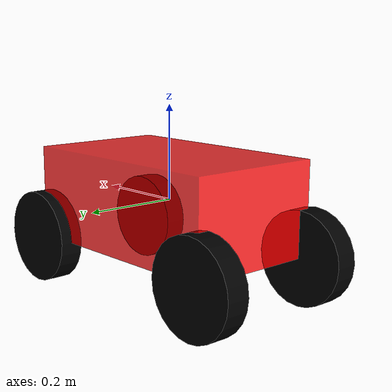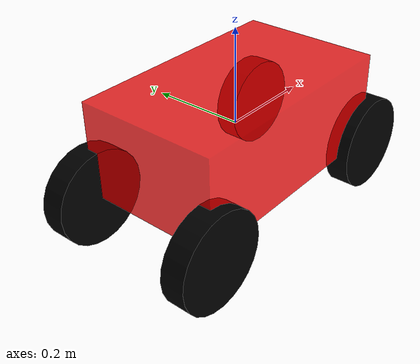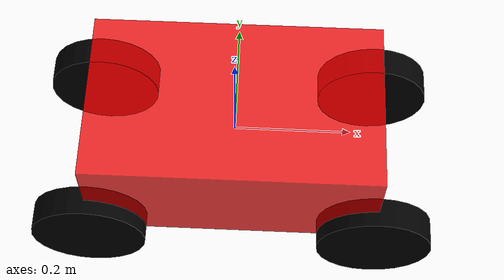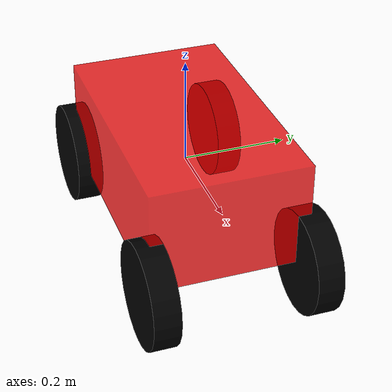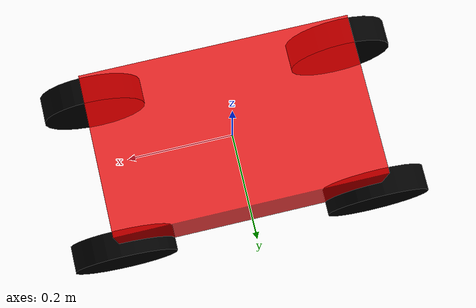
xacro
<?xml version="1.0"?>
<robot xmlns:xacro="http://www.ros.org/wiki/xacro" name="roboto">

  <xacro:macro name="wheel" params="wheel_name wheel_color">
    <!-- Definición de una rueda con parámetros para el nombre y el color -->
    <link name="${wheel_name}">
      <visual>
        <origin xyz="0.0 0.0 0.0" rpy="${pi/2} 0.0 0.0"/>
        <geometry>
          <cylinder radius="0.1" length="0.05"/>
        </geometry>
        <material name="${wheel_color}">
          <color rgba="0.0 0.0 0.0 1.0"/>
        </material>
      </visual>
      <collision>
        <geometry>
          <cylinder radius="0.1" length="0.05"/>
        </geometry>
      </collision>
      <inertial>
        <origin xyz="0 0 0" rpy="${pi/2} 0 0"/>
        <mass value="1.0"/>
        <inertia ixx="0.00025" iyy="0.00025" izz="0.0005" ixy="0" ixz="0" iyz="0"/>
      </inertial>
    </link>
  </xacro:macro>

  <xacro:macro name="wheel_joint" params="joint_name parent_link child_link x y z">
    <!-- Definición de un joint con parámetros para posiciones y nombres de links -->
    <joint name="${joint_name}" type="continuous">
      <parent link="${parent_link}"/>
      <child link="${child_link}"/>
      <origin xyz="${x} ${y} ${z}" rpy="0 0 0"/>
      <axis xyz="0 1 0"/>
    </joint>
  </xacro:macro>

  <!-- Base del carrito -->
  <link name="base_link">
    <visual>
      <geometry>
        <box size="0.5 0.3 0.2" />
      </geometry>
      <material name="red">
        <color rgba="1 0 0 0.8"/>
      </material>
    </visual>
    <collision>
      <geometry>
        <box size="0.5 0.3 0.2"/>
      </geometry>
    </collision>
    <inertial>
      <origin xyz="0 0 0" rpy="0 0 0"/>
      <mass value="10.0"/>
      <inertia ixx="0.025" iyy="0.025" izz="0.01" ixy="0.0" ixz="0.0" iyz="0.0"/>
    </inertial>
  </link>

  <!-- Instancias de las ruedas usando la macro xacro -->
  <xacro:wheel wheel_name="front_left_wheel" wheel_color="black"/>
  <xacro:wheel wheel_name="front_right_wheel" wheel_color="black"/>
  <xacro:wheel wheel_name="rear_left_wheel" wheel_color="black"/>
  <xacro:wheel wheel_name="rear_right_wheel" wheel_color="black"/>

  <!-- Instancias de los joints usando la macro xacro -->
  <xacro:wheel_joint joint_name="front_left_joint" parent_link="base_link" child_link="front_left_wheel" x="0.25" y="-0.15" z="-0.1"/>
  <xacro:wheel_joint joint_name="front_right_joint" parent_link="base_link" child_link="front_right_wheel" x="0.25" y="0.15" z="-0.1"/>
  <xacro:wheel_joint joint_name="rear_left_joint" parent_link="base_link" child_link="rear_left_wheel" x="-0.25" y="-0.15" z="-0.1"/>
  <xacro:wheel_joint joint_name="rear_right_joint" parent_link="base_link" child_link="rear_right_wheel" x="-0.25" y="0.15" z="-0.1"/>

</robot>
